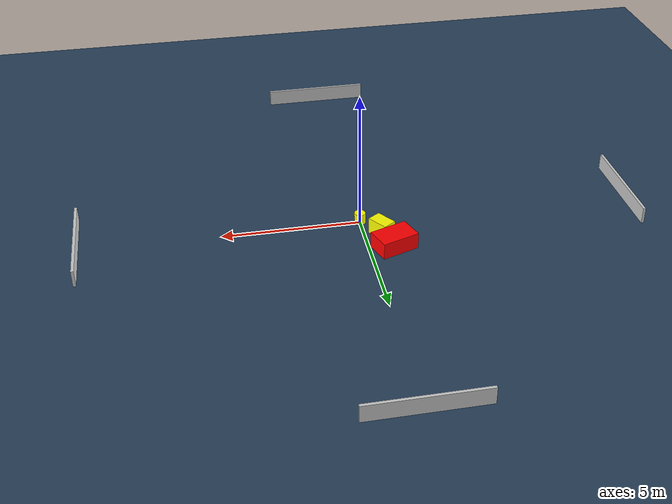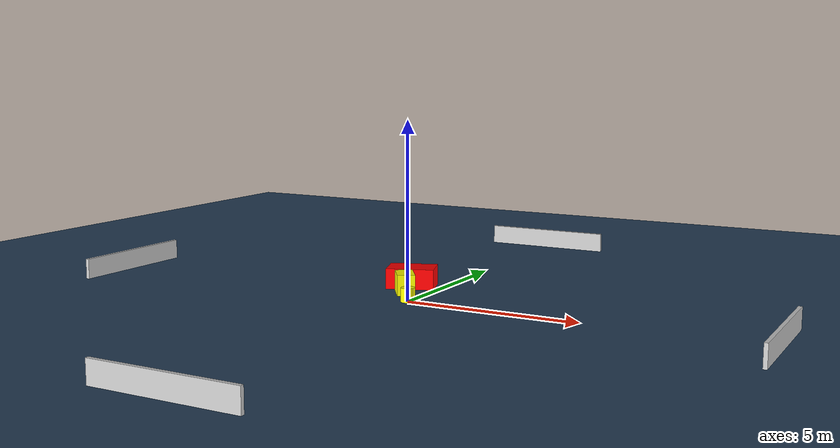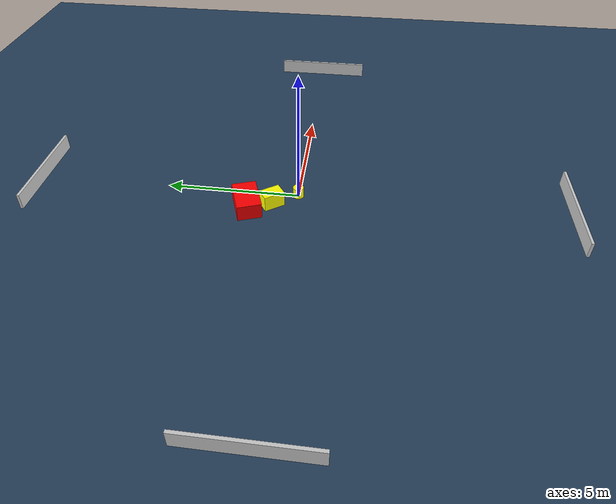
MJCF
<?xml version="1.0" ?>
<mujoco model="generated_environment">
  <option timestep="0.01" integrator="RK4" cone="elliptic"/>
  <default>
    <geom density="1"/>
  </default>
  <asset>
    <texture builtin="gradient" height="3072" name="skybox" rgb1="0.3 0.5 0.7" rgb2="0 0 0" type="skybox" width="512"/>
    <texture builtin="checker" height="300" name="groundplane" rgb1="0.2 0.3 0.4" rgb2="0.1 0.2 0.3" type="2d" width="300"/>
    <material name="groundplane" reflectance="0.2" texrepeat="5 5" texture="groundplane"/>
  </asset>
  <worldbody>
    <light dir="0 0 -1" directional="true" pos="0 0 1.5"/>
    <geom condim="3" friction="0.5 0.005 0.001" material="groundplane" name="floor" pos="0 0 0" size="0 0 0.05" type="plane"/>
    <body name="walls">
      <geom name="wall_1" condim="4" pos="-10.0 0.0 0.3" rgba="0.800000011920929 0.800000011920929 0.800000011920929 1.0" size="0.05 2.0 0.3" type="box"/>
      <geom name="wall_2" condim="4" pos="10.0 0.0 0.3" rgba="0.800000011920929 0.800000011920929 0.800000011920929 1.0" size="0.05 2.0 0.3" type="box"/>
      <geom name="wall_3" condim="4" pos="0.0 -10.0 0.3" rgba="0.800000011920929 0.800000011920929 0.800000011920929 1.0" size="2.0 0.05 0.3" type="box"/>
      <geom name="wall_4" condim="4" pos="0.0 10.0 0.3" rgba="0.800000011920929 0.800000011920929 0.800000011920929 1.0" size="2.0 0.05 0.3" type="box"/>
    </body>
    <body name="robot">
      <joint name="joint_x" type="slide" pos="0 0 0" axis="1 0 0"/>
      <joint name="joint_y" type="slide" pos="0 0 0" axis="0 1 0"/>
      <geom name="robot" type="cylinder" pos="0.0 0.0 0.2" size="0.2 0.2 0.0" mass="5.0" friction="1.0 0.005 0.0001" condim="4" rgba="1.0 1.0 0.0 1.0"/>
    </body>
    <body name="obstacle_1_movable">
      <geom name="obstacle_1_movable" condim="4" pos="-0.6100302005151816 0.9117551817449489 0.3" euler="0 0 124.4921329001786" friction="0.0 0.005 0.001" rgba="1.0 1.0 0.0 1.0" size="0.39454603632550067 0.2527803385681959 0.3" type="box" mass="0.1"/>
      <joint type="free"/>
    </body>
    <body name="obstacle_2_static">
      <geom name="obstacle_2_static" condim="4" pos="-0.8699996456971295 1.80006652366326 0.3" euler="0 0 289.5902047557575" friction="0.0 0.005 0.001" rgba="1.0 0.0 0.0 1.0" size="0.4514912758942179 0.6962632983170665 0.3" type="box"/>
    </body>
  </worldbody>
  <actuator>
    <motor name="actuator_x" joint="joint_x" gear="1" ctrlrange="-1 1"/>
    <motor name="actuator_y" joint="joint_y" gear="1" ctrlrange="-1 1"/>
  </actuator>
</mujoco>
